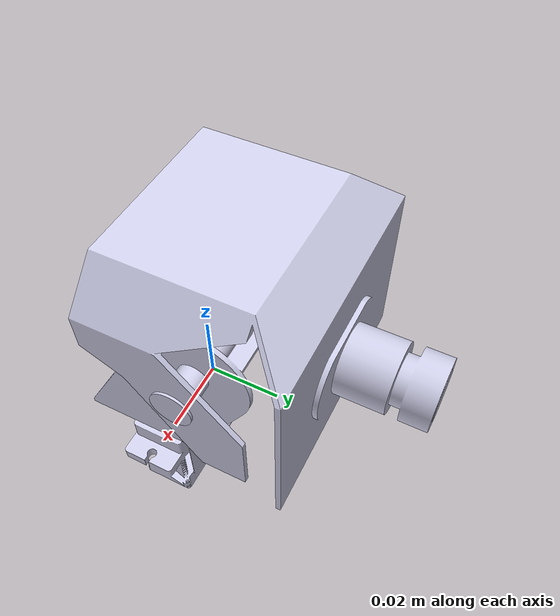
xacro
<?xml version="1.0" ?>
<robot name="Robot">
  <!--Generated by CROSS, a ROS Workbench for FreeCAD (https://github.com/galou/freecad.cross)-->
  <link name="base_link">
    <inertial>
      <mass value="0.05"/>
      <origin xyz="0 0 0" rpy="0 0 0"/>
      <inertia ixx="2e-4" ixy="0.0" ixz="0.0" iyy="2e-4" iyz="0.0" izz="2e-4"/>
    </inertial>
  </link>
  <link name="servo">
    <visual>
      <!--servo002-->
      <origin xyz="0.0 0.02 0.02" rpy="0.0 -0.0 0.0"/>
      <geometry>
        <mesh filename="package://yahboom_camera_controller/meshes/Camera_servo002.dae"/>
      </geometry>
    </visual>
    <collision>
      <!--servo002-->
      <origin xyz="0.0 0.02 0.02" rpy="0.0 -0.0 0.0"/>
      <geometry>
        <mesh filename="package://yahboom_camera_controller/meshes/Camera_servo002.dae"/>
      </geometry>
    </collision>
    <inertial>
      <mass value="0.05"/>
      <origin xyz="0 0 0" rpy="0 0 0"/>
      <inertia ixx="1.8e-5" ixy="0.0" ixz="0.0" iyy="1.8e-5" iyz="0.0" izz="2.2e-5"/>
    </inertial>
  </link>
  <link name="servo_mount">
    <visual>
      <!--servo_mount001-->
      <origin xyz="-0.01851 0.0125 -0.0135" rpy="0.0 -0.0 0.0"/>
      <geometry>
        <mesh filename="package://yahboom_camera_controller/meshes/Camera_servo_mount001.dae"/>
      </geometry>
    </visual>
    <collision>
      <!--servo_mount001-->
      <origin xyz="-0.01851 0.0125 -0.0135" rpy="0.0 -0.0 0.0"/>
      <geometry>
        <mesh filename="package://yahboom_camera_controller/meshes/Camera_servo_mount001.dae"/>
      </geometry>
    </collision>
    <inertial>
      <mass value="0.03"/>
      <origin xyz="0 0 0" rpy="0 0 0"/>
      <inertia ixx="9e-6" ixy="0.0" ixz="0.0" iyy="9e-6" iyz="0.0" izz="1e-5"/>
    </inertial>
  </link>
  <link name="bottom">
    <visual>
      <!--bottom_part/Body001.-->
      <origin xyz="-0.0185 0.0123 -0.0135" rpy="0.0 -0.0 0.0"/>
      <geometry>
        <mesh filename="package://yahboom_camera_controller/meshes/Camera_bottom.dae"/>
      </geometry>
    </visual>
    <collision>
      <!--bottom_part/Body001.-->
      <origin xyz="-0.0185 0.0123 -0.0135" rpy="0.0 -0.0 0.0"/>
      <geometry>
        <mesh filename="package://yahboom_camera_controller/meshes/Camera_bottom.dae"/>
      </geometry>
    </collision>
    <inertial>
      <mass value="0.07"/>
      <origin xyz="0 0 0" rpy="0 0 0"/>
      <inertia ixx="3e-5" ixy="0.0" ixz="0.0" iyy="3e-5" iyz="0.0" izz="3.5e-5"/>
    </inertial>
  </link>
  <link name="conneecting_rod">
    <visual>
      <!--Connecting rod001/Body004.-->
      <origin xyz="0.0 0.012 -0.04" rpy="0.0 -0.0 0.0"/>
      <geometry>
        <mesh filename="package://yahboom_camera_controller/meshes/Camera_Connecting_rod.dae"/>
      </geometry>
    </visual>
    <collision>
      <!--Connecting rod001/Body004.-->
      <origin xyz="0.0 0.012 -0.04" rpy="0.0 -0.0 0.0"/>
      <geometry>
        <mesh filename="package://yahboom_camera_controller/meshes/Camera_Connecting_rod.dae"/>
      </geometry>
    </collision>
    <inertial>
      <mass value="0.02"/>
      <origin xyz="0 0 0" rpy="0 0 0"/>
      <inertia ixx="1.2e-6" ixy="0.0" ixz="0.0" iyy="1.2e-6" iyz="0.0" izz="1.3e-6"/>
    </inertial>
  </link>
  <link name="top_part">
    <visual>
      <!--Top Part/Body003.-->
      <origin xyz="0.041 -0.003 0.0" rpy="-0.0 -1.5707963267948961 0.0"/>
      <geometry>
        <mesh filename="package://yahboom_camera_controller/meshes/Camera_top.dae"/>
      </geometry>
    </visual>
    <collision>
      <!--Top Part/Body003.-->
      <origin xyz="0.041 -0.003 0.0" rpy="-0.0 -1.5707963267948961 0.0"/>
      <geometry>
        <mesh filename="package://yahboom_camera_controller/meshes/Camera_top.dae"/>
      </geometry>
    </collision>
    <inertial>
      <mass value="0.04"/>
      <origin xyz="0 0 0" rpy="0 0 0"/>
      <inertia ixx="1.6e-5" ixy="0.0" ixz="0.0" iyy="1.6e-5" iyz="0.0" izz="1.8e-5"/>
    </inertial>
  </link>
  <link name="Lens">
    <visual>
      <!--Lens-->
      <origin xyz="-0.019 -0.043 -0.037" rpy="0.0 -0.0 0.0"/>
      <geometry>
        <mesh filename="package://yahboom_camera_controller/meshes/Camera_Lens.dae"/>
      </geometry>
    </visual>
    <collision>
      <!--Lens-->
      <origin xyz="-0.019 -0.043 -0.037" rpy="0.0 -0.0 0.0"/>
      <geometry>
        <mesh filename="package://yahboom_camera_controller/meshes/Camera_Lens.dae"/>
      </geometry>
    </collision>
    <inertial>
      <mass value="0.01"/>
      <origin xyz="0 0 0" rpy="0 0 0"/>
      <inertia ixx="5e-7" ixy="0.0" ixz="0.0" iyy="5e-7" iyz="0.0" izz="6e-7"/>
    </inertial>
  </link>
  <joint name="base_to_servo" type="fixed">
    <parent link="base_link"/>
    <child link="servo"/>
    <origin xyz="0.0 0.0 0.0" rpy="0.0 -0.0 0.0"/>
  </joint>
  <joint name="servo_to_mount" type="revolute">
    <parent link="servo"/>
    <child link="servo_mount"/>
    <origin xyz="0.01851 0.00775 0.03338" rpy="0.0 -0.0 3.141592653589793"/>
    <axis xyz="0 0 1"/>
    <limit lower="-1.5707963267948966" upper="1.5707963267948966" velocity="0.017453292519943295" effort="5.0"/>
  </joint>
  <joint name="mount_to_bottom" type="fixed">
    <parent link="servo_mount"/>
    <child link="bottom"/>
    <origin xyz="0.0 0.0 0.0" rpy="0.0 -0.0 3.141592653589793"/>
  </joint>
  <joint name="bottom_to_connecting_rod" type="fixed">
    <parent link="bottom"/>
    <child link="conneecting_rod"/>
    <origin xyz="-0.0187 0.0003 0.0265" rpy="0.0 -0.0 0.0"/>
  </joint>
  <joint name="connecting_rod_to_top_part" type="revolute">
    <parent link="conneecting_rod"/>
    <child link="top_part"/>
    <origin xyz="0.0 0.015 0.001" rpy="-0.0 1.5707963267948966 0.0"/>
    <axis xyz="0 0 1"/>
    <limit lower="-1.5707963267948966" upper="1.5707963267948966" velocity="0.017453292519943295" effort="5.0"/>
  </joint>
  <joint name="top_to_lens" type="fixed">
    <parent link="top_part"/>
    <child link="Lens"/>
    <origin xyz="0.004 0.04 0.019" rpy="0.0 -0.0 0.0"/>
  </joint>
</robot>
